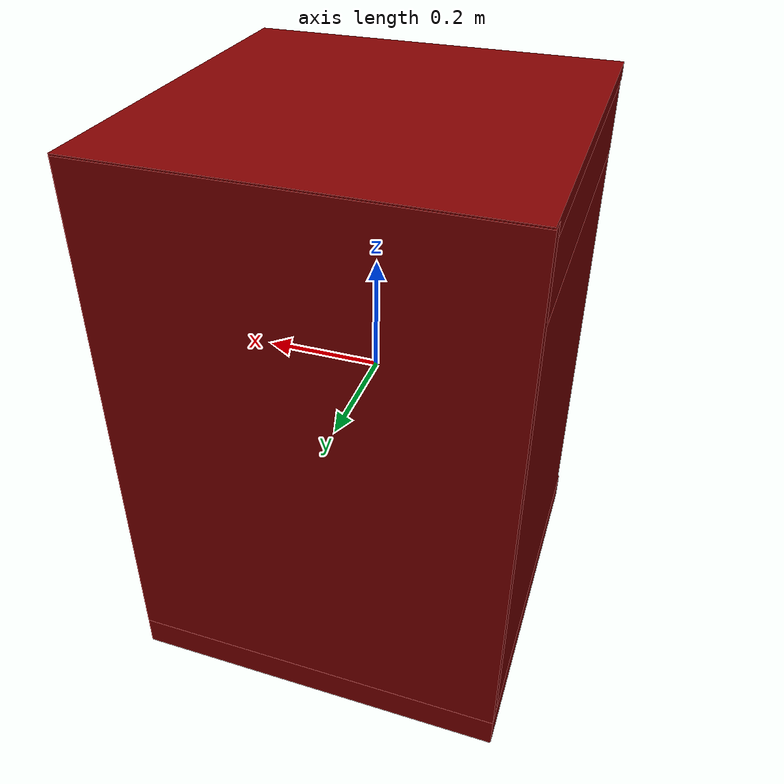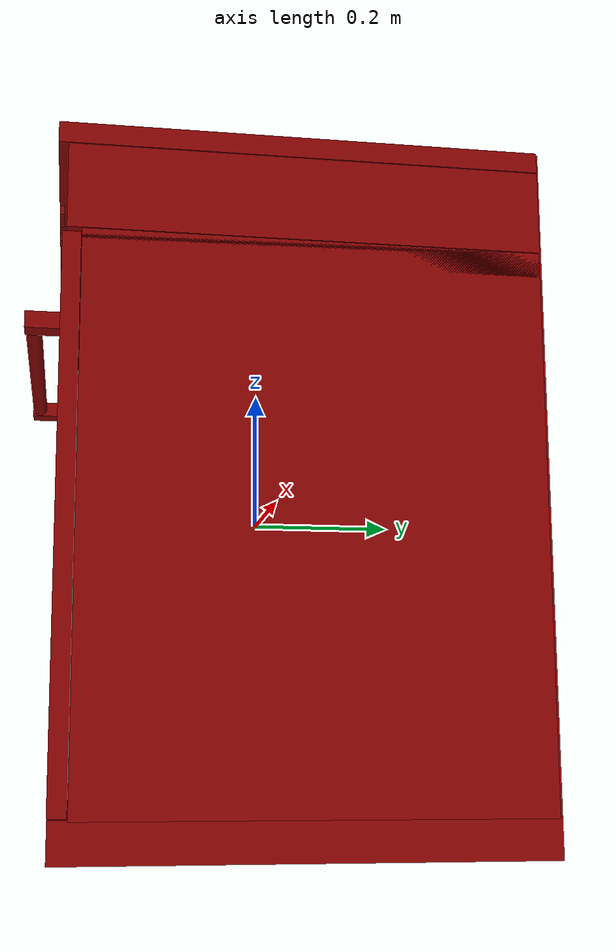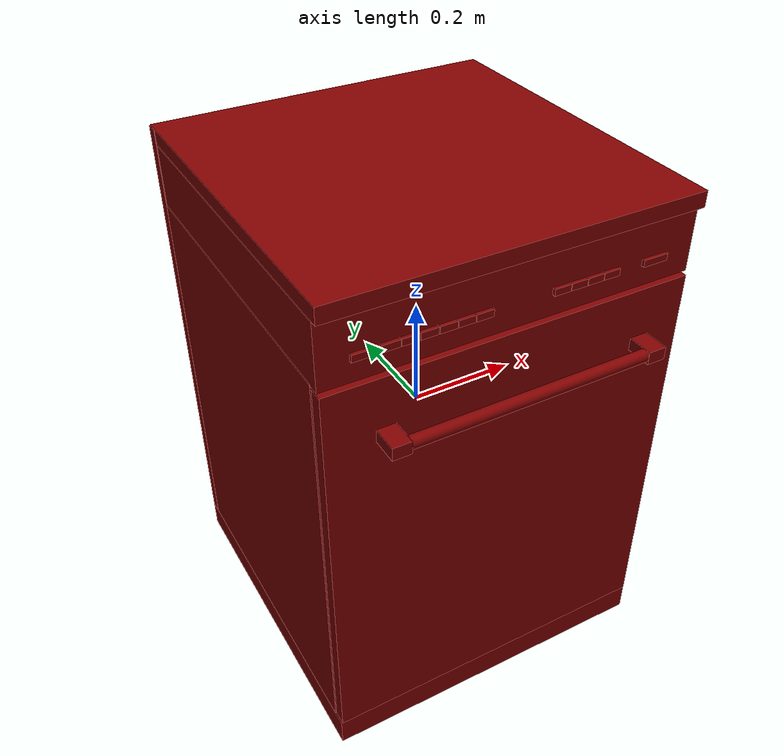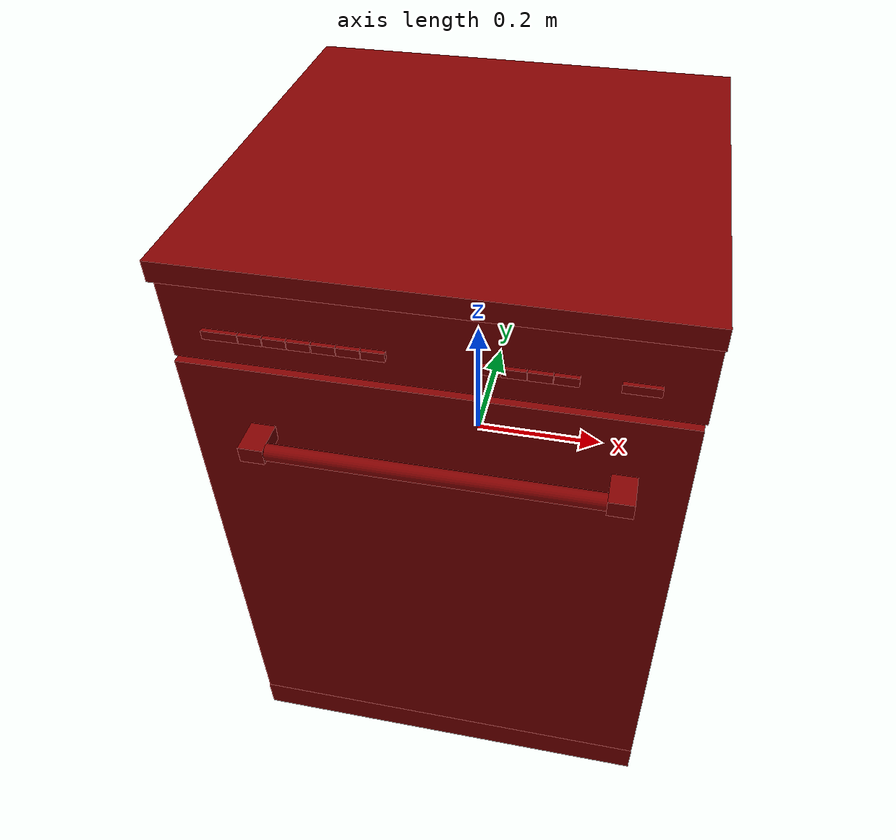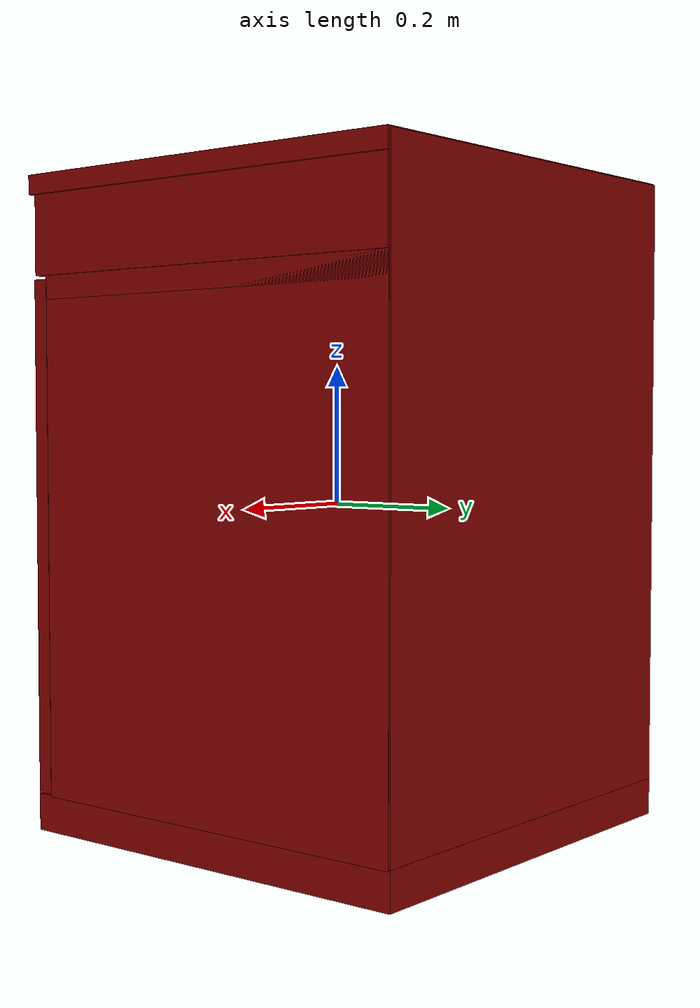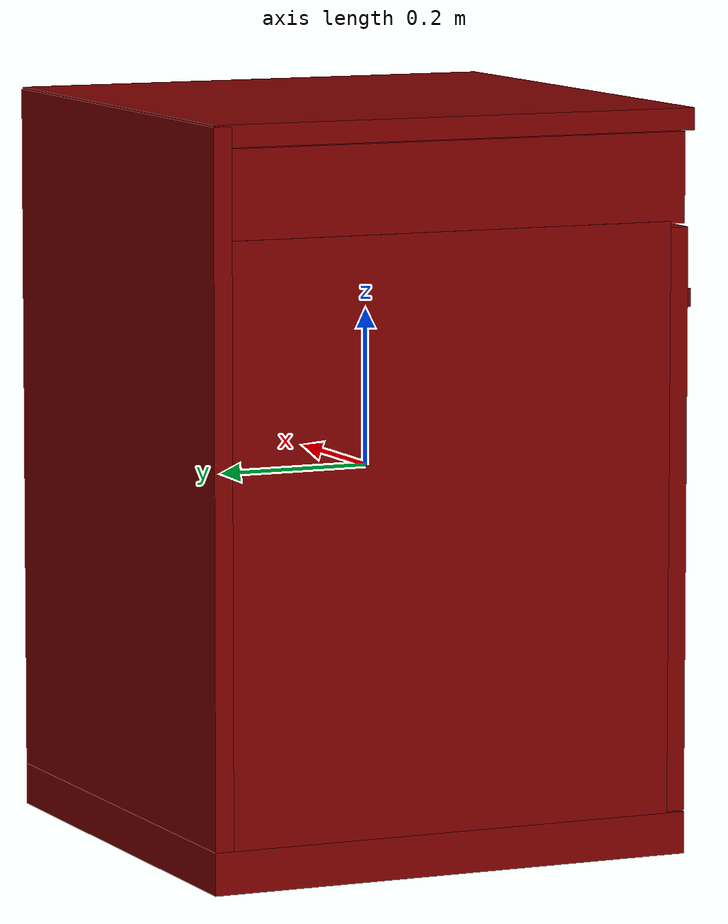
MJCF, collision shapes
<mujoco model="model">
  <compiler angle="radian"/>
  <asset>
    <mesh file="visuals/Body001.obj" name="Body001_vis"/>
    <mesh file="visuals/Button001.obj" name="Button001_vis"/>
    <mesh file="visuals/Button002.obj" name="Button002_vis"/>
    <mesh file="visuals/Button003.obj" name="Button003_vis"/>
    <mesh file="visuals/Button004.obj" name="Button004_vis"/>
    <mesh file="visuals/Button005.obj" name="Button005_vis"/>
    <mesh file="visuals/Button006.obj" name="Button006_vis"/>
    <mesh file="visuals/Button007.obj" name="Button007_vis"/>
    <mesh file="visuals/Button008.obj" name="Button008_vis"/>
    <mesh file="visuals/Button009.obj" name="Button009_vis"/>
    <mesh file="visuals/Button010.obj" name="Button010_vis"/>
    <mesh file="visuals/Button011.obj" name="Button011_vis"/>
    <mesh file="visuals/Button012.obj" name="Button012_vis"/>
    <mesh file="visuals/Container001.obj" name="Container001_vis"/>
    <mesh file="visuals/Container002.obj" name="Container002_vis"/>
    <mesh file="visuals/Door001.obj" name="Door001_vis"/>
    <mesh file="visuals/Handle001.obj" name="Handle001_vis"/>
    <texture file="visuals/T_BC001.png" name="Body001_material" type="2d"/>
    <material name="Body001_material" rgba="1 1 1 1.0" texture="Body001_material" shininess="0.4472135901451111" specular="0.3103448502657381"/>
    <texture file="visuals/T_BC001.png" name="Button001_material" type="2d"/>
    <material name="Button001_material" rgba="1 1 1 1.0" texture="Button001_material" shininess="0.4472135901451111" specular="0.3103448502657381"/>
    <texture file="visuals/T_BC001.png" name="Button002_material" type="2d"/>
    <material name="Button002_material" rgba="1 1 1 1.0" texture="Button002_material" shininess="0.4472135901451111" specular="0.3103448502657381"/>
    <texture file="visuals/T_BC001.png" name="Button003_material" type="2d"/>
    <material name="Button003_material" rgba="1 1 1 1.0" texture="Button003_material" shininess="0.4472135901451111" specular="0.3103448502657381"/>
    <texture file="visuals/T_BC001.png" name="Button004_material" type="2d"/>
    <material name="Button004_material" rgba="1 1 1 1.0" texture="Button004_material" shininess="0.4472135901451111" specular="0.3103448502657381"/>
    <texture file="visuals/T_BC001.png" name="Button005_material" type="2d"/>
    <material name="Button005_material" rgba="1 1 1 1.0" texture="Button005_material" shininess="0.4472135901451111" specular="0.3103448502657381"/>
    <texture file="visuals/T_BC001.png" name="Button006_material" type="2d"/>
    <material name="Button006_material" rgba="1 1 1 1.0" texture="Button006_material" shininess="0.4472135901451111" specular="0.3103448502657381"/>
    <texture file="visuals/T_BC001.png" name="Button007_material" type="2d"/>
    <material name="Button007_material" rgba="1 1 1 1.0" texture="Button007_material" shininess="0.4472135901451111" specular="0.3103448502657381"/>
    <texture file="visuals/T_BC001.png" name="Button008_material" type="2d"/>
    <material name="Button008_material" rgba="1 1 1 1.0" texture="Button008_material" shininess="0.4472135901451111" specular="0.3103448502657381"/>
    <texture file="visuals/T_BC001.png" name="Button009_material" type="2d"/>
    <material name="Button009_material" rgba="1 1 1 1.0" texture="Button009_material" shininess="0.4472135901451111" specular="0.3103448502657381"/>
    <texture file="visuals/T_BC001.png" name="Button010_material" type="2d"/>
    <material name="Button010_material" rgba="1 1 1 1.0" texture="Button010_material" shininess="0.4472135901451111" specular="0.3103448502657381"/>
    <texture file="visuals/T_BC001.png" name="Button011_material" type="2d"/>
    <material name="Button011_material" rgba="1 1 1 1.0" texture="Button011_material" shininess="0.4472135901451111" specular="0.3103448502657381"/>
    <texture file="visuals/T_BC001.png" name="Button012_material" type="2d"/>
    <material name="Button012_material" rgba="1 1 1 1.0" texture="Button012_material" shininess="0.4472135901451111" specular="0.3103448502657381"/>
    <texture file="visuals/T_BC001.png" name="Container001_material" type="2d"/>
    <material name="Container001_material" rgba="1 1 1 1.0" texture="Container001_material" shininess="0.4472135901451111" specular="0.3103448502657381"/>
    <texture file="visuals/T_BC001.png" name="Container002_material" type="2d"/>
    <material name="Container002_material" rgba="1 1 1 1.0" texture="Container002_material" shininess="0.4472135901451111" specular="0.3103448502657381"/>
    <texture file="visuals/T_BC001.png" name="Door001_material" type="2d"/>
    <material name="Door001_material" rgba="1 1 1 1.0" texture="Door001_material" shininess="0.4472135901451111" specular="0.3103448502657381"/>
    <texture file="visuals/T_BC001.png" name="Handle001_material" type="2d"/>
    <material name="Handle001_material" rgba="1 1 1 1.0" texture="Handle001_material" shininess="0.4472135901451111" specular="0.3103448502657381"/>
  </asset>
  <default>
    <default class="visual">
      <geom conaffinity="0" contype="0" group="1" type="mesh"/>
    </default>
    <default class="collision">
      <geom group="0" rgba="0.5 0 0 0.5"/>
    </default>
    <default class="spawn">
      <geom group="0" rgba="1 1 1 0.5" contype="0" conaffinity="0"/>
      <site group="0" rgba="1 1 1 0.5"/>
    </default>
    <default class="region">
      <geom group="1" conaffinity="0" contype="0" rgba="0 1 0 0"/>
    </default>
  </default>
  <worldbody>
    <body>
      <body name="object">
        <geom mesh="Body001_vis" type="mesh" solimp="0.998 0.998 0.001" solref="0.001 1" density="100" friction="0.95 0.3 0.1" class="visual" material="Body001_material"/>
        <geom class="collision" type="box" pos="-0.000836052349768579 0.33176183700561523 0.026627689599990845" size="0.31935930252075195 0.012022802606225014 0.4416693150997162" quat="1.0 0.0 0.0 0.0"/>
        <geom class="collision" type="box" pos="0.0009631344582885504 0.01916341297328472 0.456479549407959" size="0.32007044553756714 0.32194581627845764 0.013859815895557404" quat="1.0 0.0 0.0 0.0"/>
        <geom class="collision" type="box" pos="0.0009631344582885504 0.025663282722234726 0.38444429636001587" size="0.32007044553756714 0.3154459297657013 0.05700070410966873" quat="1.0 0.0 0.0 0.0"/>
        <geom class="collision" type="box" pos="-0.00019263930153101683 0.03544243425130844 0.3120642304420471" size="0.3189147114753723 0.30566680431365967 0.01842631958425045" quat="1.0 0.0 0.0 0.0"/>
        <geom class="collision" type="box" pos="0.29060807824134827 0.0354141891002655 -0.04337330162525177" size="0.028113991022109985 0.3056950569152832 0.3738638162612915" quat="1.0 0.0 0.0 0.0"/>
        <geom class="collision" type="box" pos="0.005354121793061495 0.03539561480283737 -0.3997739851474762" size="0.2733522951602936 0.30571362376213074 0.017463162541389465" quat="1.0 0.0 0.0 0.0"/>
        <geom class="collision" type="box" pos="-0.29069745540618896 0.03538508713245392 -0.04337330162525177" size="0.029310710728168488 0.305724173784256 0.3738638162612915" quat="1.0 0.0 0.0 0.0"/>
        <geom class="collision" type="box" pos="-0.000836052349768579 0.024557530879974365 -0.4418667256832123" size="0.31935930252075195 0.3192271292209625 0.026683341711759567" quat="1.0 0.0 0.0 0.0"/>
        <body name="Button001">
          <joint axis="0.0 1.0 0.0" pos="-0.2479790896177292 -0.29652848839759827 0.3727014660835266" limited="true" name="Button001_joint" range="0.0 0.003" type="slide" damping="1" frictionloss="1" armature=".01" stiffness="0.05"/>
          <geom mesh="Button001_vis" type="mesh" solimp="0.998 0.998 0.001" solref="0.001 1" density="100" friction="0.95 0.3 0.1" class="visual" material="Button001_material"/>
          <geom class="collision" type="box" pos="-0.24808454513549805 -0.296760231256485 0.3728596568107605" size="0.02238341048359871 0.0029950758907943964 0.005904992576688528" quat="1.0 0.0 0.0 0.0"/>
        </body>
        <body name="Button002">
          <joint axis="0.0 1.0 0.0" pos="-0.21046578884124756 -0.2965284585952759 0.37270140647888184" limited="true" name="Button002_joint" range="0.0 0.003" type="slide" damping="1" frictionloss="1" armature=".01" stiffness="0.05"/>
          <geom mesh="Button002_vis" type="mesh" solimp="0.998 0.998 0.001" solref="0.001 1" density="100" friction="0.95 0.3 0.1" class="visual" material="Button002_material"/>
          <geom class="collision" type="box" pos="-0.21054643392562866 -0.296760231256485 0.3728596568107605" size="0.01437168288975954 0.0029950758907943964 0.005904992576688528" quat="1.0 0.0 0.0 0.0"/>
        </body>
        <body name="Button003">
          <joint axis="0.0 1.0 0.0" pos="-0.18077777326107025 -0.2965284585952759 0.3727014660835266" limited="true" name="Button003_joint" range="0.0 0.003" type="slide" damping="1" frictionloss="1" armature=".01" stiffness="0.05"/>
          <geom mesh="Button003_vis" type="mesh" solimp="0.998 0.998 0.001" solref="0.001 1" density="100" friction="0.95 0.3 0.1" class="visual" material="Button003_material"/>
          <geom class="collision" type="box" pos="-0.18071207404136658 -0.296760231256485 0.3728596568107605" size="0.01437168288975954 0.0029950758907943964 0.005904992576688528" quat="1.0 0.0 0.0 0.0"/>
        </body>
        <body name="Button004">
          <joint axis="0.0 1.0 0.0" pos="-0.15113180875778198 -0.2965283989906311 0.37270140647888184" limited="true" name="Button004_joint" range="0.0 0.003" type="slide" damping="1" frictionloss="1" armature=".01" stiffness="0.05"/>
          <geom mesh="Button004_vis" type="mesh" solimp="0.998 0.998 0.001" solref="0.001 1" density="100" friction="0.95 0.3 0.1" class="visual" material="Button004_material"/>
          <geom class="collision" type="box" pos="-0.15122653543949127 -0.296760231256485 0.3728596568107605" size="0.01437168288975954 0.0029950758907943964 0.005904992576688528" quat="1.0 0.0 0.0 0.0"/>
        </body>
        <body name="Button005">
          <joint axis="0.0 1.0 0.0" pos="-0.12125332653522491 -0.2965284287929535 0.3727014660835266" limited="true" name="Button005_joint" range="0.0 0.003" type="slide" damping="1" frictionloss="1" armature=".01" stiffness="0.05"/>
          <geom mesh="Button005_vis" type="mesh" solimp="0.998 0.998 0.001" solref="0.001 1" density="100" friction="0.95 0.3 0.1" class="visual" material="Button005_material"/>
          <geom class="collision" type="box" pos="-0.12116795778274536 -0.296760231256485 0.3728596568107605" size="0.01437168288975954 0.0029950758907943964 0.005904992576688528" quat="1.0 0.0 0.0 0.0"/>
        </body>
        <body name="Button006">
          <joint axis="0.0 1.0 0.0" pos="-0.0915306806564331 -0.29651057720184326 0.37270140647888184" limited="true" name="Button006_joint" range="0.0 0.003" type="slide" damping="1" frictionloss="1" armature=".01" stiffness="0.05"/>
          <geom mesh="Button006_vis" type="mesh" solimp="0.998 0.998 0.001" solref="0.001 1" density="100" friction="0.95 0.3 0.1" class="visual" material="Button006_material"/>
          <geom class="collision" type="box" pos="-0.09162123501300812 -0.296760231256485 0.3728596568107605" size="0.01437168288975954 0.0029950758907943964 0.005904992576688528" quat="1.0 0.0 0.0 0.0"/>
        </body>
        <body name="Button007">
          <joint axis="0.0 1.0 0.0" pos="-0.06184268370270729 -0.2965283691883087 0.37270140647888184" limited="true" name="Button007_joint" range="0.0 0.003" type="slide" damping="1" frictionloss="1" armature=".01" stiffness="0.05"/>
          <geom mesh="Button007_vis" type="mesh" solimp="0.998 0.998 0.001" solref="0.001 1" density="100" friction="0.95 0.3 0.1" class="visual" material="Button007_material"/>
          <geom class="collision" type="box" pos="-0.06193642318248749 -0.296760231256485 0.3728596568107605" size="0.01437168288975954 0.0029950758907943964 0.005904992576688528" quat="1.0 0.0 0.0 0.0"/>
        </body>
        <body name="Button008">
          <joint axis="0.0 1.0 0.0" pos="0.07102324813604355 -0.29652827978134155 0.37270140647888184" limited="true" name="Button008_joint" range="0.0 0.003" type="slide" damping="1" frictionloss="1" armature=".01" stiffness="0.05"/>
          <geom mesh="Button008_vis" type="mesh" solimp="0.998 0.998 0.001" solref="0.001 1" density="100" friction="0.95 0.3 0.1" class="visual" material="Button008_material"/>
          <geom class="collision" type="box" pos="0.07095428556203842 -0.296760231256485 0.3728596568107605" size="0.014371681958436966 0.0029950758907943964 0.005904992576688528" quat="1.0 0.0 0.0 0.0"/>
        </body>
        <body name="Button009">
          <joint axis="0.0 1.0 0.0" pos="0.10090181231498718 -0.29652827978134155 0.3727014660835266" limited="true" name="Button009_joint" range="0.0 0.003" type="slide" damping="1" frictionloss="1" armature=".01" stiffness="0.05"/>
          <geom mesh="Button009_vis" type="mesh" solimp="0.998 0.998 0.001" solref="0.001 1" density="100" friction="0.95 0.3 0.1" class="visual" material="Button009_material"/>
          <geom class="collision" type="box" pos="0.10102078318595886 -0.296760231256485 0.3728596568107605" size="0.014371681958436966 0.0029950758907943964 0.005904992576688528" quat="1.0 0.0 0.0 0.0"/>
        </body>
        <body name="Button010">
          <joint axis="0.0 1.0 0.0" pos="0.13062447309494019 -0.29652824997901917 0.37270140647888184" limited="true" name="Button010_joint" range="0.0 0.003" type="slide" damping="1" frictionloss="1" armature=".01" stiffness="0.05"/>
          <geom mesh="Button010_vis" type="mesh" solimp="0.998 0.998 0.001" solref="0.001 1" density="100" friction="0.95 0.3 0.1" class="visual" material="Button010_material"/>
          <geom class="collision" type="box" pos="0.13072720170021057 -0.296760231256485 0.3728596568107605" size="0.014371681958436966 0.0029950758907943964 0.005904992576688528" quat="1.0 0.0 0.0 0.0"/>
        </body>
        <body name="Button011">
          <joint axis="0.0 1.0 0.0" pos="0.16031238436698914 -0.29652824997901917 0.3727014660835266" limited="true" name="Button011_joint" range="0.0 0.003" type="slide" damping="1" frictionloss="1" armature=".01" stiffness="0.05"/>
          <geom mesh="Button011_vis" type="mesh" solimp="0.998 0.998 0.001" solref="0.001 1" density="100" friction="0.95 0.3 0.1" class="visual" material="Button011_material"/>
          <geom class="collision" type="box" pos="0.16034360229969025 -0.296760231256485 0.3728596568107605" size="0.014371681958436966 0.0029950758907943964 0.005904992576688528" quat="1.0 0.0 0.0 0.0"/>
        </body>
        <body name="Button012">
          <joint axis="0.0 1.0 0.0" pos="0.24341526627540588 -0.296528160572052 0.37270140647888184" limited="true" name="Button012_joint" range="0.0 0.003" type="slide" damping="1" frictionloss="1" armature=".01" stiffness="0.05"/>
          <geom mesh="Button012_vis" type="mesh" solimp="0.998 0.998 0.001" solref="0.001 1" density="100" friction="0.95 0.3 0.1" class="visual" material="Button012_material"/>
          <geom class="collision" type="box" pos="0.2433851659297943 -0.296760231256485 0.3728596568107605" size="0.02238341048359871 0.0029950758907943964 0.005904992576688528" quat="1.0 0.0 0.0 0.0"/>
        </body>
        <body name="Container001">
          <joint axis="0.0 -1.0 0.0" pos="0.0004691567737609148 0.0274222232401371 -0.2567744851112366" limited="true" name="Container001_joint" range="0.0 0.12" type="slide" damping="1" frictionloss="1" armature=".01" stiffness="0.05"/>
          <geom mesh="Container001_vis" type="mesh" solimp="0.998 0.998 0.001" solref="0.001 1" density="100" friction="0.95 0.3 0.1" class="visual" material="Container001_material"/>
          <geom class="collision" type="box" pos="-0.24921482801437378 0.024744998663663864 -0.2556336522102356" size="0.0067060175351798534 0.23301240801811218 0.08232569694519043" quat="1.0 0.0 0.0 0.0"/>
          <geom class="collision" type="box" pos="0.0025923859793692827 0.02452128380537033 -0.3314926028251648" size="0.2527342736721039 0.23180966079235077 0.006554418709129095" quat="1.0 0.0 0.0 0.0"/>
          <geom class="collision" type="box" pos="0.25081881880760193 0.025209490209817886 -0.2559385299682617" size="0.00646977499127388 0.23301242291927338 0.08263058215379715" quat="1.0 0.0 0.0 0.0"/>
          <geom class="collision" type="box" pos="0.00020464998669922352 -0.19926533102989197 -0.256285697221756" size="0.2557004988193512 0.009122529998421669 0.0832262933254242" quat="1.0 0.0 0.0 0.0"/>
          <geom class="collision" type="box" pos="0.0009507753420621157 0.24960139393806458 -0.255878746509552" size="0.25594383478164673 0.008456836454570293 0.08182882517576218" quat="1.0 0.0 0.0 0.0"/>
        </body>
        <body name="Container002">
          <joint axis="0.0 -1.0 0.0" pos="0.0004692461807280779 0.027422014623880386 0.07827974855899811" limited="true" name="Container002_joint" range="0.0 0.3" type="slide" damping="1" frictionloss="1" armature=".01" stiffness="0.05"/>
          <geom mesh="Container002_vis" type="mesh" solimp="0.998 0.998 0.001" solref="0.001 1" density="100" friction="0.95 0.3 0.1" class="visual" material="Container002_material"/>
          <geom class="collision" type="box" pos="-0.24921482801437378 0.024744998663663864 0.07951053977012634" size="0.0067060175351798534 0.23301240801811218 0.08232569694519043" quat="1.0 0.0 0.0 0.0"/>
          <geom class="collision" type="box" pos="0.0025923859793692827 0.02452128380537033 0.003651590086519718" size="0.2527342736721039 0.23180966079235077 0.006554418709129095" quat="1.0 0.0 0.0 0.0"/>
          <geom class="collision" type="box" pos="0.25081881880760193 0.025209490209817886 0.07920566201210022" size="0.00646977499127388 0.23301242291927338 0.08263058215379715" quat="1.0 0.0 0.0 0.0"/>
          <geom class="collision" type="box" pos="0.00020464998669922352 -0.19926533102989197 0.07885849475860596" size="0.2557004988193512 0.009122529998421669 0.0832262933254242" quat="1.0 0.0 0.0 0.0"/>
          <geom class="collision" type="box" pos="0.0009507753420621157 0.24960139393806458 0.07926544547080994" size="0.25594383478164673 0.008456836454570293 0.08182882517576218" quat="1.0 0.0 0.0 0.0"/>
        </body>
        <body name="Door001">
          <joint axis="1.0 0.0 0.0" pos="-0.001177757978439331 -0.2949822247028351 -0.41399145126342773" limited="true" name="Door001_joint" range="0.0 0.5235987755982988" type="hinge" damping="1" frictionloss="1" armature=".01" stiffness="0.05"/>
          <geom mesh="Door001_vis" type="mesh" solimp="0.998 0.998 0.001" solref="0.001 1" density="100" friction="0.95 0.3 0.1" class="visual" material="Door001_material"/>
          <geom class="collision" type="box" pos="4.243687726557255e-06 -0.2831902503967285 -0.04573307931423187" size="0.3181874454021454 0.012089830823242664 0.36814993619918823" quat="1.0 0.0 0.0 0.0"/>
          <body name="Handle001">
            <geom mesh="Handle001_vis" type="mesh" solimp="0.998 0.998 0.001" solref="0.001 1" density="100" friction="0.95 0.3 0.1" class="visual" material="Handle001_material"/>
            <geom class="collision" type="box" pos="-0.2186221182346344 -0.318719744682312 0.22356915473937988" size="0.01623326912522316 0.023392535746097565 0.011333073489367962" quat="1.0 0.0 0.0 0.0"/>
            <geom class="collision" type="box" pos="0.23858052492141724 -0.318719744682312 0.22356915473937988" size="0.01623326912522316 0.023392535746097565 0.011333073489367962" quat="1.0 0.0 0.0 0.0"/>
            <geom class="collision" type="cylinder" pos="0.009867463260889053 -0.3311851918697357 0.2237638235092163" size="0.010966495610773563 0.21322576701641083" quat="0.7071068286895752 -0.0 0.7071067690849304 0.0"/>
          </body>
        </body>
        <geom class="region" name="reg_main" type="box" pos="-7.450580596923828e-09 0.023334860801696777 0.0" size="0.31804338097572327 0.3185010850429535 0.46854645013809204"/>
        <geom class="region" name="reg_int" type="box" pos="0.0008199065923690796 0.0018228590488433838 -0.04910397529602051" size="0.25786639750003815 0.25842297077178955 0.3294717073440552"/>
      </body>
    </body>
  </worldbody>
  <actuator>
    <motor name="Button001_joint_actuator" joint="Button001_joint" gear="0.5"/>
    <motor name="Button002_joint_actuator" joint="Button002_joint" gear="0.5"/>
    <motor name="Button003_joint_actuator" joint="Button003_joint" gear="0.5"/>
    <motor name="Button004_joint_actuator" joint="Button004_joint" gear="0.5"/>
    <motor name="Button005_joint_actuator" joint="Button005_joint" gear="0.5"/>
    <motor name="Button006_joint_actuator" joint="Button006_joint" gear="0.5"/>
    <motor name="Button007_joint_actuator" joint="Button007_joint" gear="0.5"/>
    <motor name="Button008_joint_actuator" joint="Button008_joint" gear="0.5"/>
    <motor name="Button009_joint_actuator" joint="Button009_joint" gear="0.5"/>
    <motor name="Button010_joint_actuator" joint="Button010_joint" gear="0.5"/>
    <motor name="Button011_joint_actuator" joint="Button011_joint" gear="0.5"/>
    <motor name="Button012_joint_actuator" joint="Button012_joint" gear="0.5"/>
    <motor name="Container001_joint_actuator" joint="Container001_joint" gear="10"/>
    <motor name="Container002_joint_actuator" joint="Container002_joint" gear="10"/>
    <motor name="Door001_joint_actuator" joint="Door001_joint" gear="50"/>
  </actuator>
</mujoco>
